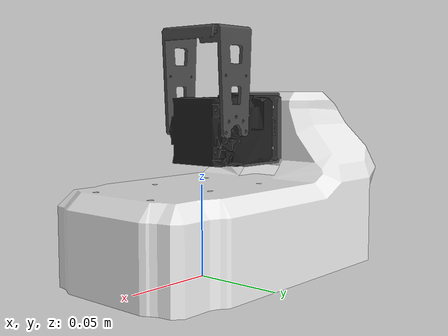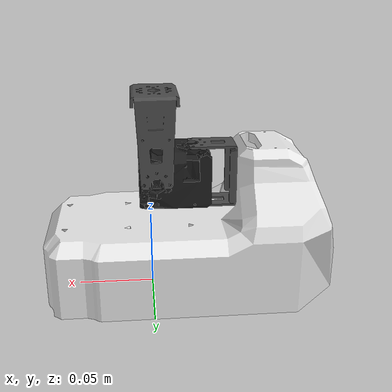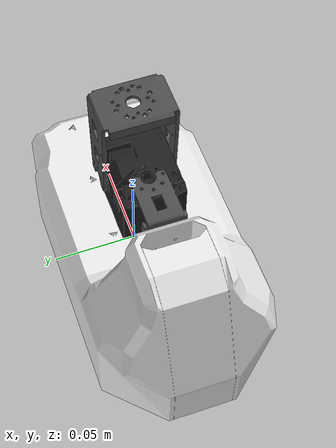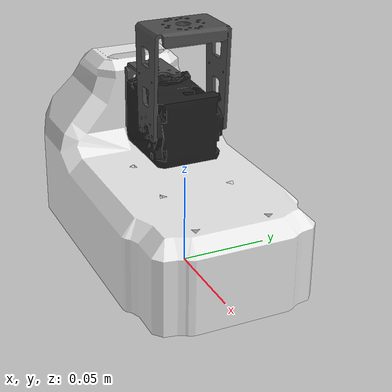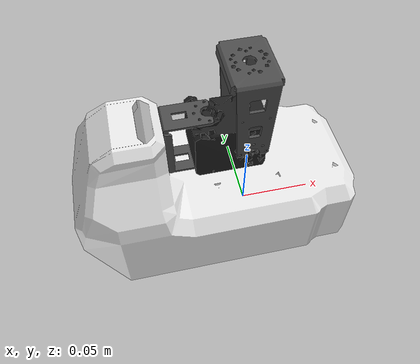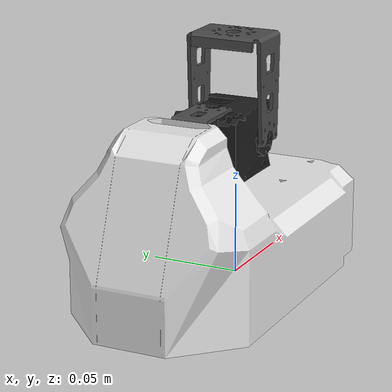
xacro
<?xml version="1.0" ?>
<robot name="pan_tilt" xmlns:xacro="http://www.ros.org/wiki/xacro">

  <xacro:property name="m_to_mm" value="0.001 0.001 0.001"/>
  <xacro:property name="mesh_path" value="package://kaair_description/meshes/"/>

  <link name="head_base">
    <!-- visual -->
    <visual>
      <geometry>
        <mesh filename="${mesh_path}head/visual/head_base.stl" scale="${m_to_mm}"/>
      </geometry>
      <origin xyz="0 0 0" rpy="0 0 0"/>
      <material name="white"/>
    </visual>

    <!-- collision -->
    <collision>
      <geometry>
        <mesh filename="${mesh_path}head/visual/head_base.stl" scale="${m_to_mm}"/>
      </geometry>
      <origin xyz="0 0 0" rpy="0 0 0"/>
    </collision>
  </link>

  <link name="head_link1">
    <!-- visual -->
    <visual>
      <geometry>
        <mesh filename="${mesh_path}head/visual/head_link1.stl" scale="${m_to_mm}"/>
      </geometry>
      <origin xyz="0 0 0" rpy="0 0 0"/>
      <material name="dark_gray"/>
    </visual>

    <!-- collision -->
    <collision>
      <geometry>
        <mesh filename="${mesh_path}head/visual/head_link1.stl" scale="${m_to_mm}"/>
      </geometry>
      <origin xyz="0 0 0" rpy="0 0 0"/>
    </collision>
  </link>

  <link name="head_link2">
    <!-- visual -->
    <visual>
      <geometry>
        <mesh filename="${mesh_path}head/visual/head_link2.stl" scale="${m_to_mm}"/>
      </geometry>
      <origin xyz="0 0 0" rpy="0 0 0"/>
      <material name="black"/>
    </visual>

    <!-- collision -->
    <collision>
      <geometry>
        <mesh filename="${mesh_path}head/visual/head_link2.stl" scale="${m_to_mm}"/>
      </geometry>
      <origin xyz="0 0 0" rpy="0 0 0"/>
    </collision>
  </link>

  <link name="head_link3">
    <!-- visual -->
    <visual>
      <geometry>
        <mesh filename="${mesh_path}head/visual/head_link3.stl" scale="${m_to_mm}"/>
      </geometry>
      <origin xyz="0 0 0" rpy="0 0 0"/>
      <material name="dark_gray"/>
    </visual>

    <!-- collision -->
    <collision>
      <geometry>
        <mesh filename="${mesh_path}head/visual/head_link3.stl" scale="${m_to_mm}"/>
      </geometry>
      <origin xyz="0 0 0" rpy="0 0 0"/>
    </collision>
  </link>

  <link name="head_camera_mount">
  </link>

  <joint name="head_fix_joint" type="fixed">
    <origin xyz="-0.0557 0.0 0.079" rpy="0 0 0"/>
    <parent link="head_base"/>
    <child link="head_link1"/>
  </joint>

  <joint name="head_joint1" type="revolute">
    <origin xyz="0.028 0.0 0.0" rpy="0 0 0"/>
    <parent link="head_link1"/>
    <child link="head_link2"/>
    <axis xyz="0.0 0.0 1.0"/>
    <limit
      lower="-1.58"
      upper="1.58"
      effort="30"
      velocity="3.0" />
  </joint>

  <joint name="head_joint2" type="revolute">
    <origin xyz="0.024 0.0 0.0" rpy="0 0 0"/>
    <parent link="head_link2"/>
    <child link="head_link3"/>
    <axis xyz="0.0 -1.0 0.0"/>
    <limit
      lower="-1.58"
      upper="1.58"
      effort="30"
      velocity="3.0" />
  </joint>

  <joint name="pantilt_femto_frame_joint" type="fixed">
    <origin xyz="0.0 0.0 0.055" rpy="0 0 0"/>
    <parent link="head_link3"/>
    <child link="head_camera_mount"/>
  </joint>

</robot>
